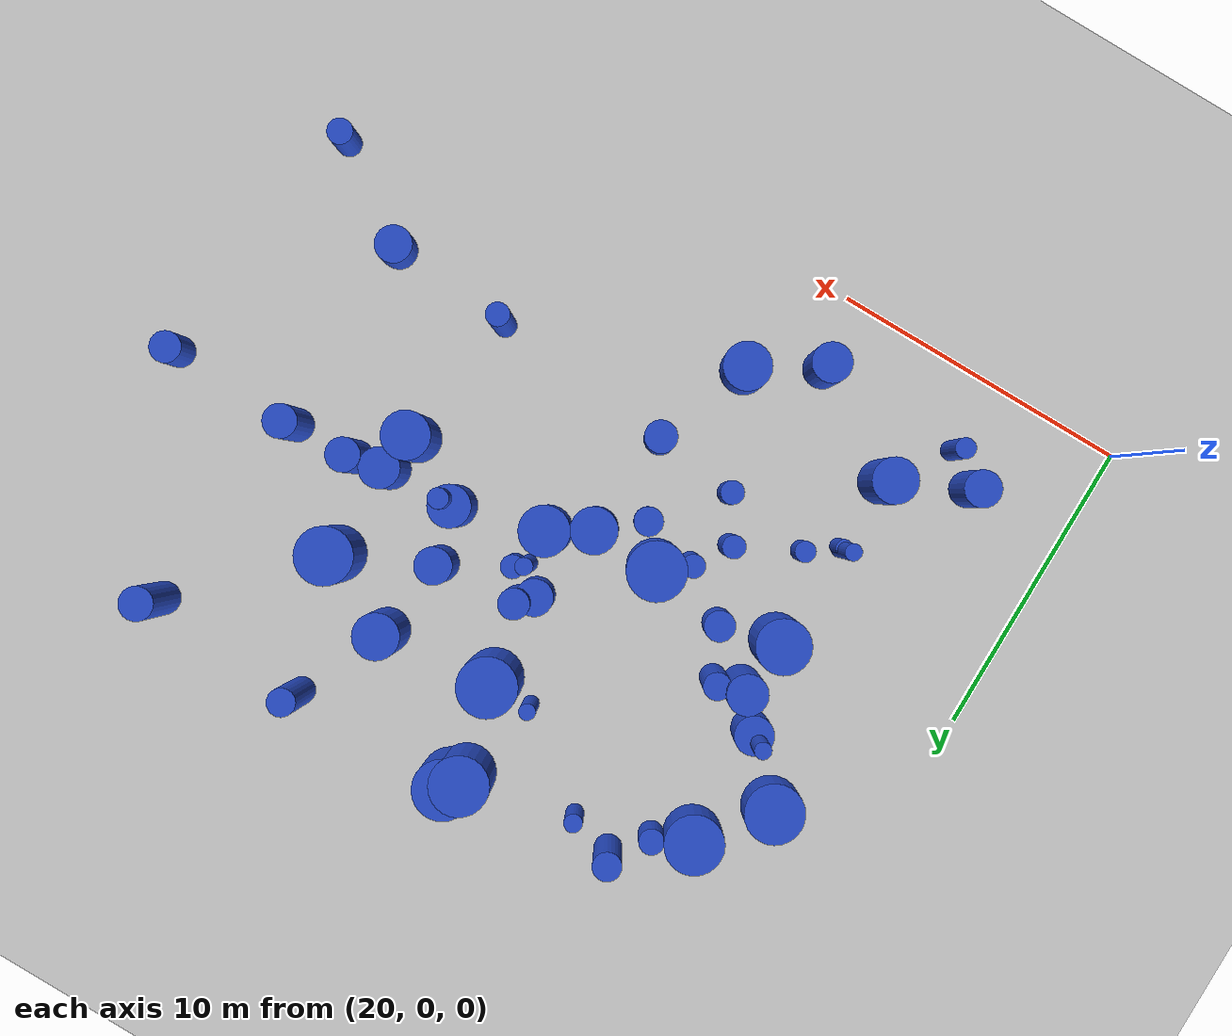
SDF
<sdf version="1.6">
 <world name="default">
  <model name="ground_plane">
   <static>1</static>
   <link name="link">
    <collision name="collision">
     <geometry><plane><normal>0 0 1</normal><size>100 100</size></plane></geometry>
     <surface><friction><ode><mu>100</mu><mu2>50</mu2></ode></friction></surface>
    </collision>
    <visual name="visual">
     <cast_shadows>0</cast_shadows>
     <geometry><plane><normal>0 0 1</normal><size>100 100</size></plane></geometry>
     <material>
      <script><uri>file://media/materials/scripts/gazebo.material</uri><name>Gazebo/Grey</name></script>
     </material>
    </visual>
   </link>
  </model>
  <model name="6">
   <static>0</static>
   <link name="link">
    <inertial>
     <mass>2</mass>
     <inertia><ixx>1.67554</ixx><ixy>0</ixy><ixz>0</ixz><iyy>1.67554</iyy><iyz>0</iyz><izz>0.257363</izz></inertia>
    </inertial>
    <collision name="collision">
     <geometry><cylinder><length>3.04649</length><radius>0.50731</radius></cylinder></geometry>
     <surface><contact><collide_without_contact>1</collide_without_contact></contact></surface>
    </collision>
    <visual name="visual">
     <geometry><cylinder><length>3.04649</length><radius>0.50731</radius></cylinder></geometry>
     <material>
      <script><uri>file://media/materials/scripts/gazebo.material</uri><name>Gazebo/Blue</name></script>
     </material>
    </visual>
    <gravity>0</gravity>
   </link>
   <pose>34.1541 13.9376 1.52325 0 -0 0</pose>
  </model>
  <model name="11">
   <static>0</static>
   <link name="link">
    <inertial>
     <mass>2</mass>
     <inertia><ixx>3.67772</ixx><ixy>0</ixy><ixz>0</ixz><iyy>3.67772</iyy><iyz>0</iyz><izz>0.546704</izz></inertia>
    </inertial>
    <collision name="collision">
     <geometry><cylinder><length>4.51954</length><radius>0.739394</radius></cylinder></geometry>
     <surface><contact><collide_without_contact>1</collide_without_contact></contact></surface>
    </collision>
    <visual name="visual">
     <geometry><cylinder><length>4.51954</length><radius>0.739394</radius></cylinder></geometry>
     <material>
      <script><uri>file://media/materials/scripts/gazebo.material</uri><name>Gazebo/Blue</name></script>
     </material>
    </visual>
    <gravity>0</gravity>
   </link>
   <pose>26.0271 4.56998 2.25977 0 -0 0</pose>
  </model>
  <model name="15">
   <static>0</static>
   <link name="link">
    <inertial>
     <mass>2</mass>
     <inertia><ixx>3.33766</ixx><ixy>0</ixy><ixz>0</ixz><iyy>3.33766</iyy><iyz>0</iyz><izz>0.789182</izz></inertia>
    </inertial>
    <collision name="collision">
     <geometry><cylinder><length>4.20219</length><radius>0.888359</radius></cylinder></geometry>
     <surface><contact><collide_without_contact>1</collide_without_contact></contact></surface>
    </collision>
    <visual name="visual">
     <geometry><cylinder><length>4.20219</length><radius>0.888359</radius></cylinder></geometry>
     <material>
      <script><uri>file://media/materials/scripts/gazebo.material</uri><name>Gazebo/Blue</name></script>
     </material>
    </visual>
    <gravity>0</gravity>
   </link>
   <pose>26.311 10.715 2.1011 0 -0 0</pose>
  </model>
  <model name="26">
   <static>0</static>
   <link name="link">
    <inertial>
     <mass>2</mass>
     <inertia><ixx>1.59022</ixx><ixy>0</ixy><ixz>0</ixz><iyy>1.59022</iyy><iyz>0</iyz><izz>0.948667</izz></inertia>
    </inertial>
    <collision name="collision">
     <geometry><cylinder><length>2.58753</length><radius>0.973996</radius></cylinder></geometry>
     <surface><contact><collide_without_contact>1</collide_without_contact></contact></surface>
    </collision>
    <visual name="visual">
     <geometry><cylinder><length>2.58753</length><radius>0.973996</radius></cylinder></geometry>
     <material>
      <script><uri>file://media/materials/scripts/gazebo.material</uri><name>Gazebo/Blue</name></script>
     </material>
    </visual>
    <gravity>0</gravity>
   </link>
   <pose>25.3744 17.5495 1.29377 0 -0 0</pose>
  </model>
  <model name="30">
   <static>0</static>
   <link name="link">
    <inertial>
     <mass>2</mass>
     <inertia><ixx>1.36472</ixx><ixy>0</ixy><ixz>0</ixz><iyy>1.36472</iyy><iyz>0</iyz><izz>0.964605</izz></inertia>
    </inertial>
    <collision name="collision">
     <geometry><cylinder><length>2.30098</length><radius>0.982143</radius></cylinder></geometry>
     <surface><contact><collide_without_contact>1</collide_without_contact></contact></surface>
    </collision>
    <visual name="visual">
     <geometry><cylinder><length>2.30098</length><radius>0.982143</radius></cylinder></geometry>
     <material>
      <script><uri>file://media/materials/scripts/gazebo.material</uri><name>Gazebo/Blue</name></script>
     </material>
    </visual>
    <gravity>0</gravity>
   </link>
   <pose>23.6658 15.4375 1.15049 0 -0 0</pose>
  </model>
  <model name="35">
   <static>0</static>
   <link name="link">
    <inertial>
     <mass>2</mass>
     <inertia>
      <ixx>1.09122</ixx>
      <ixy>0</ixy>
      <ixz>0</ixz>
      <iyy>1.09122</iyy>
      <iyz>0</iyz>
      <izz>0.0932913</izz>
     </inertia>
    </inertial>
    <collision name="collision">
     <geometry><cylinder><length>2.50348</length><radius>0.305436</radius></cylinder></geometry>
     <surface><contact><collide_without_contact>1</collide_without_contact></contact></surface>
    </collision>
    <visual name="visual">
     <geometry><cylinder><length>2.50348</length><radius>0.305436</radius></cylinder></geometry>
     <material>
      <script><uri>file://media/materials/scripts/gazebo.material</uri><name>Gazebo/Blue</name></script>
     </material>
    </visual>
    <gravity>0</gravity>
   </link>
   <pose>28.9997 18.9307 1.25174 0 -0 0</pose>
  </model>
  <model name="40">
   <static>0</static>
   <link name="link">
    <inertial>
     <mass>2</mass>
     <inertia><ixx>2.77857</ixx><ixy>0</ixy><ixz>0</ixz><iyy>2.77857</iyy><iyz>0</iyz><izz>0.218702</izz></inertia>
    </inertial>
    <collision name="collision">
     <geometry><cylinder><length>4.00191</length><radius>0.467656</radius></cylinder></geometry>
     <surface><contact><collide_without_contact>1</collide_without_contact></contact></surface>
    </collision>
    <visual name="visual">
     <geometry><cylinder><length>4.00191</length><radius>0.467656</radius></cylinder></geometry>
     <material>
      <script><uri>file://media/materials/scripts/gazebo.material</uri><name>Gazebo/Blue</name></script>
     </material>
    </visual>
    <gravity>0</gravity>
   </link>
   <pose>27.4866 19.3515 2.00096 0 -0 0</pose>
  </model>
  <model name="44">
   <static>0</static>
   <link name="link">
    <inertial>
     <mass>2</mass>
     <inertia><ixx>3.63122</ixx><ixy>0</ixy><ixz>0</ixz><iyy>3.63122</iyy><iyz>0</iyz><izz>0.614122</izz></inertia>
    </inertial>
    <collision name="collision">
     <geometry><cylinder><length>4.46598</length><radius>0.783659</radius></cylinder></geometry>
     <surface><contact><collide_without_contact>1</collide_without_contact></contact></surface>
    </collision>
    <visual name="visual">
     <geometry><cylinder><length>4.46598</length><radius>0.783659</radius></cylinder></geometry>
     <material>
      <script><uri>file://media/materials/scripts/gazebo.material</uri><name>Gazebo/Blue</name></script>
     </material>
    </visual>
    <gravity>0</gravity>
   </link>
   <pose>39.6417 11.1136 2.23299 0 -0 0</pose>
  </model>
  <model name="46">
   <static>0</static>
   <link name="link">
    <inertial>
     <mass>2</mass>
     <inertia>
      <ixx>0.904884</ixx>
      <ixy>0</ixy>
      <ixz>0</ixz>
      <iyy>0.904884</iyy>
      <iyz>0</iyz>
      <izz>0.374443</izz>
     </inertia>
    </inertial>
    <collision name="collision">
     <geometry><cylinder><length>2.07508</length><radius>0.611918</radius></cylinder></geometry>
     <surface><contact><collide_without_contact>1</collide_without_contact></contact></surface>
    </collision>
    <visual name="visual">
     <geometry><cylinder><length>2.07508</length><radius>0.611918</radius></cylinder></geometry>
     <material>
      <script><uri>file://media/materials/scripts/gazebo.material</uri><name>Gazebo/Blue</name></script>
     </material>
    </visual>
    <gravity>0</gravity>
   </link>
   <pose>43.3206 6.1671 1.03754 0 -0 0</pose>
  </model>
  <model name="52">
   <static>0</static>
   <link name="link">
    <inertial>
     <mass>2</mass>
     <inertia><ixx>2.09002</ixx><ixy>0</ixy><ixz>0</ixz><iyy>2.09002</iyy><iyz>0</iyz><izz>0.112428</izz></inertia>
    </inertial>
    <collision name="collision">
     <geometry><cylinder><length>3.49325</length><radius>0.335302</radius></cylinder></geometry>
     <surface><contact><collide_without_contact>1</collide_without_contact></contact></surface>
    </collision>
    <visual name="visual">
     <geometry><cylinder><length>3.49325</length><radius>0.335302</radius></cylinder></geometry>
     <material>
      <script><uri>file://media/materials/scripts/gazebo.material</uri><name>Gazebo/Blue</name></script>
     </material>
    </visual>
    <gravity>0</gravity>
   </link>
   <pose>24.5794 2.51328 1.74663 0 -0 0</pose>
  </model>
  <model name="89">
   <static>0</static>
   <link name="link">
    <inertial>
     <mass>2</mass>
     <inertia><ixx>1.27675</ixx><ixy>0</ixy><ixz>0</ixz><iyy>1.27675</iyy><iyz>0</iyz><izz>0.177285</izz></inertia>
    </inertial>
    <collision name="collision">
     <geometry><cylinder><length>2.66996</length><radius>0.421052</radius></cylinder></geometry>
     <surface><contact><collide_without_contact>1</collide_without_contact></contact></surface>
    </collision>
    <visual name="visual">
     <geometry><cylinder><length>2.66996</length><radius>0.421052</radius></cylinder></geometry>
     <material>
      <script><uri>file://media/materials/scripts/gazebo.material</uri><name>Gazebo/Blue</name></script>
     </material>
    </visual>
    <gravity>0</gravity>
   </link>
   <pose>46.5006 4.01887 1.33498 0 -0 0</pose>
  </model>
  <model name="90">
   <static>0</static>
   <link name="link">
    <inertial>
     <mass>2</mass>
     <inertia><ixx>1.14121</ixx><ixy>0</ixy><ixz>0</ixz><iyy>1.14121</iyy><iyz>0</iyz><izz>0.227526</izz></inertia>
    </inertial>
    <collision name="collision">
     <geometry><cylinder><length>2.48288</length><radius>0.476997</radius></cylinder></geometry>
     <surface><contact><collide_without_contact>1</collide_without_contact></contact></surface>
    </collision>
    <visual name="visual">
     <geometry><cylinder><length>2.48288</length><radius>0.476997</radius></cylinder></geometry>
     <material>
      <script><uri>file://media/materials/scripts/gazebo.material</uri><name>Gazebo/Blue</name></script>
     </material>
    </visual>
    <gravity>0</gravity>
   </link>
   <pose>31.8472 9.54839 1.24144 0 -0 0</pose>
  </model>
  <model name="102">
   <static>0</static>
   <link name="link">
    <inertial>
     <mass>2</mass>
     <inertia><ixx>3.00871</ixx><ixy>0</ixy><ixz>0</ixz><iyy>3.00871</iyy><iyz>0</iyz><izz>0.884047</izz></inertia>
    </inertial>
    <collision name="collision">
     <geometry><cylinder><length>3.9243</length><radius>0.940238</radius></cylinder></geometry>
     <surface><contact><collide_without_contact>1</collide_without_contact></contact></surface>
    </collision>
    <visual name="visual">
     <geometry><cylinder><length>3.9243</length><radius>0.940238</radius></cylinder></geometry>
     <material>
      <script><uri>file://media/materials/scripts/gazebo.material</uri><name>Gazebo/Blue</name></script>
     </material>
    </visual>
    <gravity>0</gravity>
   </link>
   <pose>39.9459 15.6386 1.96215 0 -0 0</pose>
  </model>
  <model name="106">
   <static>0</static>
   <link name="link">
    <inertial>
     <mass>2</mass>
     <inertia>
      <ixx>4.11623</ixx>
      <ixy>0</ixy>
      <ixz>0</ixz>
      <iyy>4.11623</iyy>
      <iyz>0</iyz>
      <izz>0.0741205</izz>
     </inertia>
    </inertial>
    <collision name="collision">
     <geometry><cylinder><length>4.94722</length><radius>0.272251</radius></cylinder></geometry>
     <surface><contact><collide_without_contact>1</collide_without_contact></contact></surface>
    </collision>
    <visual name="visual">
     <geometry><cylinder><length>4.94722</length><radius>0.272251</radius></cylinder></geometry>
     <material>
      <script><uri>file://media/materials/scripts/gazebo.material</uri><name>Gazebo/Blue</name></script>
     </material>
    </visual>
    <gravity>0</gravity>
   </link>
   <pose>26.0422 7.13223 2.47361 0 -0 0</pose>
  </model>
  <model name="111">
   <static>0</static>
   <link name="link">
    <inertial>
     <mass>2</mass>
     <inertia><ixx>2.81372</ixx><ixy>0</ixy><ixz>0</ixz><iyy>2.81372</iyy><iyz>0</iyz><izz>0.674403</izz></inertia>
    </inertial>
    <collision name="collision">
     <geometry><cylinder><length>3.85475</length><radius>0.821221</radius></cylinder></geometry>
     <surface><contact><collide_without_contact>1</collide_without_contact></contact></surface>
    </collision>
    <visual name="visual">
     <geometry><cylinder><length>3.85475</length><radius>0.821221</radius></cylinder></geometry>
     <material>
      <script><uri>file://media/materials/scripts/gazebo.material</uri><name>Gazebo/Blue</name></script>
     </material>
    </visual>
    <gravity>0</gravity>
   </link>
   <pose>34.4897 11.469 1.92738 0 -0 0</pose>
  </model>
  <model name="121">
   <static>0</static>
   <link name="link">
    <inertial>
     <mass>2</mass>
     <inertia><ixx>2.96479</ixx><ixy>0</ixy><ixz>0</ixz><iyy>2.96479</iyy><iyz>0</iyz><izz>0.93667</izz></inertia>
    </inertial>
    <collision name="collision">
     <geometry><cylinder><length>3.87023</length><radius>0.967817</radius></cylinder></geometry>
     <surface><contact><collide_without_contact>1</collide_without_contact></contact></surface>
    </collision>
    <visual name="visual">
     <geometry><cylinder><length>3.87023</length><radius>0.967817</radius></cylinder></geometry>
     <material>
      <script><uri>file://media/materials/scripts/gazebo.material</uri><name>Gazebo/Blue</name></script>
     </material>
    </visual>
    <gravity>0</gravity>
   </link>
   <pose>32.6949 19.6013 1.93512 0 -0 0</pose>
  </model>
  <model name="123">
   <static>0</static>
   <link name="link">
    <inertial>
     <mass>2</mass>
     <inertia><ixx>3.52291</ixx><ixy>0</ixy><ixz>0</ixz><iyy>3.52291</iyy><iyz>0</iyz><izz>0.302522</izz></inertia>
    </inertial>
    <collision name="collision">
     <geometry><cylinder><length>4.49777</length><radius>0.55002</radius></cylinder></geometry>
     <surface><contact><collide_without_contact>1</collide_without_contact></contact></surface>
    </collision>
    <visual name="visual">
     <geometry><cylinder><length>4.49777</length><radius>0.55002</radius></cylinder></geometry>
     <material>
      <script><uri>file://media/materials/scripts/gazebo.material</uri><name>Gazebo/Blue</name></script>
     </material>
    </visual>
    <gravity>0</gravity>
   </link>
   <pose>44.066 19.802 2.24888 0 -0 0</pose>
  </model>
  <model name="129">
   <static>0</static>
   <link name="link">
    <inertial>
     <mass>2</mass>
     <inertia><ixx>2.32373</ixx><ixy>0</ixy><ixz>0</ixz><iyy>2.32373</iyy><iyz>0</iyz><izz>0.141262</izz></inertia>
    </inertial>
    <collision name="collision">
     <geometry><cylinder><length>3.67676</length><radius>0.375848</radius></cylinder></geometry>
     <surface><contact><collide_without_contact>1</collide_without_contact></contact></surface>
    </collision>
    <visual name="visual">
     <geometry><cylinder><length>3.67676</length><radius>0.375848</radius></cylinder></geometry>
     <material>
      <script><uri>file://media/materials/scripts/gazebo.material</uri><name>Gazebo/Blue</name></script>
     </material>
    </visual>
    <gravity>0</gravity>
   </link>
   <pose>29.1877 8.8589 1.83838 0 -0 0</pose>
  </model>
  <model name="131">
   <static>0</static>
   <link name="link">
    <inertial>
     <mass>2</mass>
     <inertia><ixx>1.30772</ixx><ixy>0</ixy><ixz>0</ixz><iyy>1.30772</iyy><iyz>0</iyz><izz>0.4134</izz></inertia>
    </inertial>
    <collision name="collision">
     <geometry><cylinder><length>2.57024</length><radius>0.642962</radius></cylinder></geometry>
     <surface><contact><collide_without_contact>1</collide_without_contact></contact></surface>
    </collision>
    <visual name="visual">
     <geometry><cylinder><length>2.57024</length><radius>0.642962</radius></cylinder></geometry>
     <material>
      <script><uri>file://media/materials/scripts/gazebo.material</uri><name>Gazebo/Blue</name></script>
     </material>
    </visual>
    <gravity>0</gravity>
   </link>
   <pose>25.5249 13.6277 1.28512 0 -0 0</pose>
  </model>
  <model name="133">
   <static>0</static>
   <link name="link">
    <inertial>
     <mass>2</mass>
     <inertia><ixx>2.65468</ixx><ixy>0</ixy><ixz>0</ixz><iyy>2.65468</iyy><iyz>0</iyz><izz>0.197735</izz></inertia>
    </inertial>
    <collision name="collision">
     <geometry><cylinder><length>3.91597</length><radius>0.444674</radius></cylinder></geometry>
     <surface><contact><collide_without_contact>1</collide_without_contact></contact></surface>
    </collision>
    <visual name="visual">
     <geometry><cylinder><length>3.91597</length><radius>0.444674</radius></cylinder></geometry>
     <material>
      <script><uri>file://media/materials/scripts/gazebo.material</uri><name>Gazebo/Blue</name></script>
     </material>
    </visual>
    <gravity>0</gravity>
   </link>
   <pose>27.4263 12.8234 1.95799 0 -0 0</pose>
  </model>
  <model name="136">
   <static>0</static>
   <link name="link">
    <inertial>
     <mass>2</mass>
     <inertia><ixx>1.13934</ixx><ixy>0</ixy><ixz>0</ixz><iyy>1.13934</iyy><iyz>0</iyz><izz>0.372136</izz></inertia>
    </inertial>
    <collision name="collision">
     <geometry><cylinder><length>2.39158</length><radius>0.610029</radius></cylinder></geometry>
     <surface><contact><collide_without_contact>1</collide_without_contact></contact></surface>
    </collision>
    <visual name="visual">
     <geometry><cylinder><length>2.39158</length><radius>0.610029</radius></cylinder></geometry>
     <material>
      <script><uri>file://media/materials/scripts/gazebo.material</uri><name>Gazebo/Blue</name></script>
     </material>
    </visual>
    <gravity>0</gravity>
   </link>
   <pose>33.7146 13.4707 1.19579 0 -0 0</pose>
  </model>
  <model name="141">
   <static>0</static>
   <link name="link">
    <inertial>
     <mass>2</mass>
     <inertia>
      <ixx>0.773371</ixx>
      <ixy>0</ixy>
      <ixz>0</ixz>
      <iyy>0.773371</iyy>
      <iyz>0</iyz>
      <izz>0.17741</izz>
     </inertia>
    </inertial>
    <collision name="collision">
     <geometry><cylinder><length>2.02682</length><radius>0.421201</radius></cylinder></geometry>
     <surface><contact><collide_without_contact>1</collide_without_contact></contact></surface>
    </collision>
    <visual name="visual">
     <geometry><cylinder><length>2.02682</length><radius>0.421201</radius></cylinder></geometry>
     <material>
      <script><uri>file://media/materials/scripts/gazebo.material</uri><name>Gazebo/Blue</name></script>
     </material>
    </visual>
    <gravity>0</gravity>
   </link>
   <pose>26.534 18.2207 1.01341 0 -0 0</pose>
  </model>
  <model name="142">
   <static>0</static>
   <link name="link">
    <inertial>
     <mass>2</mass>
     <inertia><ixx>3.72978</ixx><ixy>0</ixy><ixz>0</ixz><iyy>3.72978</iyy><iyz>0</iyz><izz>0.206879</izz></inertia>
    </inertial>
    <collision name="collision">
     <geometry><cylinder><length>4.66455</length><radius>0.454839</radius></cylinder></geometry>
     <surface><contact><collide_without_contact>1</collide_without_contact></contact></surface>
    </collision>
    <visual name="visual">
     <geometry><cylinder><length>4.66455</length><radius>0.454839</radius></cylinder></geometry>
     <material>
      <script><uri>file://media/materials/scripts/gazebo.material</uri><name>Gazebo/Blue</name></script>
     </material>
    </visual>
    <gravity>0</gravity>
   </link>
   <pose>38.6761 20.082 2.33228 0 -0 0</pose>
  </model>
  <model name="147">
   <static>0</static>
   <link name="link">
    <inertial>
     <mass>2</mass>
     <inertia><ixx>2.71197</ixx><ixy>0</ixy><ixz>0</ixz><iyy>2.71197</iyy><iyz>0</iyz><izz>0.566044</izz></inertia>
    </inertial>
    <collision name="collision">
     <geometry><cylinder><length>3.81755</length><radius>0.752359</radius></cylinder></geometry>
     <surface><contact><collide_without_contact>1</collide_without_contact></contact></surface>
    </collision>
    <visual name="visual">
     <geometry><cylinder><length>3.81755</length><radius>0.752359</radius></cylinder></geometry>
     <material>
      <script><uri>file://media/materials/scripts/gazebo.material</uri><name>Gazebo/Blue</name></script>
     </material>
    </visual>
    <gravity>0</gravity>
   </link>
   <pose>37.2852 16.9555 1.90878 0 -0 0</pose>
  </model>
  <model name="150">
   <static>0</static>
   <link name="link">
    <inertial>
     <mass>2</mass>
     <inertia><ixx>1.24083</ixx><ixy>0</ixy><ixz>0</ixz><iyy>1.24083</iyy><iyz>0</iyz><izz>0.266175</izz></inertia>
    </inertial>
    <collision name="collision">
     <geometry><cylinder><length>2.57807</length><radius>0.515922</radius></cylinder></geometry>
     <surface><contact><collide_without_contact>1</collide_without_contact></contact></surface>
    </collision>
    <visual name="visual">
     <geometry><cylinder><length>2.57807</length><radius>0.515922</radius></cylinder></geometry>
     <material>
      <script><uri>file://media/materials/scripts/gazebo.material</uri><name>Gazebo/Blue</name></script>
     </material>
    </visual>
    <gravity>0</gravity>
   </link>
   <pose>47.7472 12.6653 1.28904 0 -0 0</pose>
  </model>
  <model name="152">
   <static>0</static>
   <link name="link">
    <inertial>
     <mass>2</mass>
     <inertia><ixx>2.66705</ixx><ixy>0</ixy><ixz>0</ixz><iyy>2.66705</iyy><iyz>0</iyz><izz>0.437548</izz></inertia>
    </inertial>
    <collision name="collision">
     <geometry><cylinder><length>3.83271</length><radius>0.661474</radius></cylinder></geometry>
     <surface><contact><collide_without_contact>1</collide_without_contact></contact></surface>
    </collision>
    <visual name="visual">
     <geometry><cylinder><length>3.83271</length><radius>0.661474</radius></cylinder></geometry>
     <material>
      <script><uri>file://media/materials/scripts/gazebo.material</uri><name>Gazebo/Blue</name></script>
     </material>
    </visual>
    <gravity>0</gravity>
   </link>
   <pose>39.8846 12.4135 1.91635 0 -0 0</pose>
  </model>
  <model name="153">
   <static>0</static>
   <link name="link">
    <inertial>
     <mass>2</mass>
     <inertia><ixx>2.11623</ixx><ixy>0</ixy><ixz>0</ixz><iyy>2.11623</iyy><iyz>0</iyz><izz>0.485566</izz></inertia>
    </inertial>
    <collision name="collision">
     <geometry><cylinder><length>3.35272</length><radius>0.696826</radius></cylinder></geometry>
     <surface><contact><collide_without_contact>1</collide_without_contact></contact></surface>
    </collision>
    <visual name="visual">
     <geometry><cylinder><length>3.35272</length><radius>0.696826</radius></cylinder></geometry>
     <material>
      <script><uri>file://media/materials/scripts/gazebo.material</uri><name>Gazebo/Blue</name></script>
     </material>
    </visual>
    <gravity>0</gravity>
   </link>
   <pose>37.4483 12.3398 1.67636 0 -0 0</pose>
  </model>
  <model name="161">
   <static>0</static>
   <link name="link">
    <inertial>
     <mass>2</mass>
     <inertia><ixx>1.04062</ixx><ixy>0</ixy><ixz>0</ixz><iyy>1.04062</iyy><iyz>0</iyz><izz>0.257795</izz></inertia>
    </inertial>
    <collision name="collision">
     <geometry><cylinder><length>2.33887</length><radius>0.507735</radius></cylinder></geometry>
     <surface><contact><collide_without_contact>1</collide_without_contact></contact></surface>
    </collision>
    <visual name="visual">
     <geometry><cylinder><length>2.33887</length><radius>0.507735</radius></cylinder></geometry>
     <material>
      <script><uri>file://media/materials/scripts/gazebo.material</uri><name>Gazebo/Blue</name></script>
     </material>
    </visual>
    <gravity>0</gravity>
   </link>
   <pose>28.2179 11.2291 1.16943 0 -0 0</pose>
  </model>
  <model name="166">
   <static>0</static>
   <link name="link">
    <inertial>
     <mass>2</mass>
     <inertia>
      <ixx>0.802403</ixx>
      <ixy>0</ixy>
      <ixz>0</ixz>
      <iyy>0.802403</iyy>
      <iyz>0</iyz>
      <izz>0.153345</izz>
     </inertia>
    </inertial>
    <collision name="collision">
     <geometry><cylinder><length>2.08672</length><radius>0.391593</radius></cylinder></geometry>
     <surface><contact><collide_without_contact>1</collide_without_contact></contact></surface>
    </collision>
    <visual name="visual">
     <geometry><cylinder><length>2.08672</length><radius>0.391593</radius></cylinder></geometry>
     <material>
      <script><uri>file://media/materials/scripts/gazebo.material</uri><name>Gazebo/Blue</name></script>
     </material>
    </visual>
    <gravity>0</gravity>
   </link>
   <pose>34.8114 12.9983 1.04336 0 -0 0</pose>
  </model>
  <model name="167">
   <static>0</static>
   <link name="link">
    <inertial>
     <mass>2</mass>
     <inertia><ixx>2.69004</ixx><ixy>0</ixy><ixz>0</ixz><iyy>2.69004</iyy><iyz>0</iyz><izz>0.419163</izz></inertia>
    </inertial>
    <collision name="collision">
     <geometry><cylinder><length>3.85781</length><radius>0.647428</radius></cylinder></geometry>
     <surface><contact><collide_without_contact>1</collide_without_contact></contact></surface>
    </collision>
    <visual name="visual">
     <geometry><cylinder><length>3.85781</length><radius>0.647428</radius></cylinder></geometry>
     <material>
      <script><uri>file://media/materials/scripts/gazebo.material</uri><name>Gazebo/Blue</name></script>
     </material>
    </visual>
    <gravity>0</gravity>
   </link>
   <pose>29.5257 2.39468 1.92891 0 -0 0</pose>
  </model>
  <model name="171">
   <static>0</static>
   <link name="link">
    <inertial>
     <mass>2</mass>
     <inertia><ixx>3.80906</ixx><ixy>0</ixy><ixz>0</ixz><iyy>3.80906</iyy><iyz>0</iyz><izz>0.938182</izz></inertia>
    </inertial>
    <collision name="collision">
     <geometry><cylinder><length>4.47658</length><radius>0.968598</radius></cylinder></geometry>
     <surface><contact><collide_without_contact>1</collide_without_contact></contact></surface>
    </collision>
    <visual name="visual">
     <geometry><cylinder><length>4.47658</length><radius>0.968598</radius></cylinder></geometry>
     <material>
      <script><uri>file://media/materials/scripts/gazebo.material</uri><name>Gazebo/Blue</name></script>
     </material>
    </visual>
    <gravity>0</gravity>
   </link>
   <pose>33.5153 16.4732 2.23829 0 -0 0</pose>
  </model>
  <model name="177">
   <static>0</static>
   <link name="link">
    <inertial>
     <mass>2</mass>
     <inertia><ixx>1.29724</ixx><ixy>0</ixy><ixz>0</ixz><iyy>1.29724</iyy><iyz>0</iyz><izz>0.287893</izz></inertia>
    </inertial>
    <collision name="collision">
     <geometry><cylinder><length>2.63054</length><radius>0.536557</radius></cylinder></geometry>
     <surface><contact><collide_without_contact>1</collide_without_contact></contact></surface>
    </collision>
    <visual name="visual">
     <geometry><cylinder><length>2.63054</length><radius>0.536557</radius></cylinder></geometry>
     <material>
      <script><uri>file://media/materials/scripts/gazebo.material</uri><name>Gazebo/Blue</name></script>
     </material>
    </visual>
    <gravity>0</gravity>
   </link>
   <pose>32.8916 7.05394 1.31527 0 -0 0</pose>
  </model>
  <model name="179">
   <static>0</static>
   <link name="link">
    <inertial>
     <mass>2</mass>
     <inertia>
      <ixx>3.76703</ixx>
      <ixy>0</ixy>
      <ixz>0</ixz>
      <iyy>3.76703</iyy>
      <iyz>0</iyz>
      <izz>0.0770353</izz>
     </inertia>
    </inertial>
    <collision name="collision">
     <geometry><cylinder><length>4.72981</length><radius>0.277552</radius></cylinder></geometry>
     <surface><contact><collide_without_contact>1</collide_without_contact></contact></surface>
    </collision>
    <visual name="visual">
     <geometry><cylinder><length>4.72981</length><radius>0.277552</radius></cylinder></geometry>
     <material>
      <script><uri>file://media/materials/scripts/gazebo.material</uri><name>Gazebo/Blue</name></script>
     </material>
    </visual>
    <gravity>0</gravity>
   </link>
   <pose>25.2744 13.7542 2.3649 0 -0 0</pose>
  </model>
  <model name="180">
   <static>0</static>
   <link name="link">
    <inertial>
     <mass>2</mass>
     <inertia><ixx>3.44735</ixx><ixy>0</ixy><ixz>0</ixz><iyy>3.44735</iyy><iyz>0</iyz><izz>0.113907</izz></inertia>
    </inertial>
    <collision name="collision">
     <geometry><cylinder><length>4.51025</length><radius>0.337501</radius></cylinder></geometry>
     <surface><contact><collide_without_contact>1</collide_without_contact></contact></surface>
    </collision>
    <visual name="visual">
     <geometry><cylinder><length>4.51025</length><radius>0.337501</radius></cylinder></geometry>
     <material>
      <script><uri>file://media/materials/scripts/gazebo.material</uri><name>Gazebo/Blue</name></script>
     </material>
    </visual>
    <gravity>0</gravity>
   </link>
   <pose>37.7872 12.2615 2.25513 0 -0 0</pose>
  </model>
  <model name="184">
   <static>0</static>
   <link name="link">
    <inertial>
     <mass>2</mass>
     <inertia><ixx>2.8983</ixx><ixy>0</ixy><ixz>0</ixz><iyy>2.8983</iyy><iyz>0</iyz><izz>0.305029</izz></inertia>
    </inertial>
    <collision name="collision">
     <geometry><cylinder><length>4.05891</length><radius>0.552294</radius></cylinder></geometry>
     <surface><contact><collide_without_contact>1</collide_without_contact></contact></surface>
    </collision>
    <visual name="visual">
     <geometry><cylinder><length>4.05891</length><radius>0.552294</radius></cylinder></geometry>
     <material>
      <script><uri>file://media/materials/scripts/gazebo.material</uri><name>Gazebo/Blue</name></script>
     </material>
    </visual>
    <gravity>0</gravity>
   </link>
   <pose>43.2383 12.7435 2.02945 0 -0 0</pose>
  </model>
  <model name="191">
   <static>0</static>
   <link name="link">
    <inertial>
     <mass>2</mass>
     <inertia><ixx>4.3988</ixx><ixy>0</ixy><ixz>0</ixz><iyy>4.3988</iyy><iyz>0</iyz><izz>0.551901</izz></inertia>
    </inertial>
    <collision name="collision">
     <geometry><cylinder><length>4.97364</length><radius>0.7429</radius></cylinder></geometry>
     <surface><contact><collide_without_contact>1</collide_without_contact></contact></surface>
    </collision>
    <visual name="visual">
     <geometry><cylinder><length>4.97364</length><radius>0.7429</radius></cylinder></geometry>
     <material>
      <script><uri>file://media/materials/scripts/gazebo.material</uri><name>Gazebo/Blue</name></script>
     </material>
    </visual>
    <gravity>0</gravity>
   </link>
   <pose>33.1657 10.6401 2.48682 0 -0 0</pose>
  </model>
  <model name="194">
   <static>0</static>
   <link name="link">
    <inertial>
     <mass>2</mass>
     <inertia><ixx>1.99536</ixx><ixy>0</ixy><ixz>0</ixz><iyy>1.99536</iyy><iyz>0</iyz><izz>0.368304</izz></inertia>
    </inertial>
    <collision name="collision">
     <geometry><cylinder><length>3.29655</length><radius>0.60688</radius></cylinder></geometry>
     <surface><contact><collide_without_contact>1</collide_without_contact></contact></surface>
    </collision>
    <visual name="visual">
     <geometry><cylinder><length>3.29655</length><radius>0.60688</radius></cylinder></geometry>
     <material>
      <script><uri>file://media/materials/scripts/gazebo.material</uri><name>Gazebo/Blue</name></script>
     </material>
    </visual>
    <gravity>0</gravity>
   </link>
   <pose>36.9169 14.1988 1.64828 0 -0 0</pose>
  </model>
  <model name="197">
   <static>0</static>
   <link name="link">
    <inertial>
     <mass>2</mass>
     <inertia><ixx>2.7156</ixx><ixy>0</ixy><ixz>0</ixz><iyy>2.7156</iyy><iyz>0</iyz><izz>0.960869</izz></inertia>
    </inertial>
    <collision name="collision">
     <geometry><cylinder><length>3.6621</length><radius>0.980239</radius></cylinder></geometry>
     <surface><contact><collide_without_contact>1</collide_without_contact></contact></surface>
    </collision>
    <visual name="visual">
     <geometry><cylinder><length>3.6621</length><radius>0.980239</radius></cylinder></geometry>
     <material>
      <script><uri>file://media/materials/scripts/gazebo.material</uri><name>Gazebo/Blue</name></script>
     </material>
    </visual>
    <gravity>0</gravity>
   </link>
   <pose>33.0641 19.9853 1.83105 0 -0 0</pose>
  </model>
  <model name="212">
   <static>0</static>
   <link name="link">
    <inertial>
     <mass>2</mass>
     <inertia>
      <ixx>1.71859</ixx>
      <ixy>0</ixy>
      <ixz>0</ixz>
      <iyy>1.71859</iyy>
      <iyz>0</iyz>
      <izz>0.0738454</izz>
     </inertia>
    </inertial>
    <collision name="collision">
     <geometry><cylinder><length>3.17647</length><radius>0.271745</radius></cylinder></geometry>
     <surface><contact><collide_without_contact>1</collide_without_contact></contact></surface>
    </collision>
    <visual name="visual">
     <geometry><cylinder><length>3.17647</length><radius>0.271745</radius></cylinder></geometry>
     <material>
      <script><uri>file://media/materials/scripts/gazebo.material</uri><name>Gazebo/Blue</name></script>
     </material>
    </visual>
    <gravity>0</gravity>
   </link>
   <pose>32.0536 16.6024 1.58824 0 -0 0</pose>
  </model>
  <model name="213">
   <static>0</static>
   <link name="link">
    <inertial>
     <mass>2</mass>
     <inertia><ixx>2.75082</ixx><ixy>0</ixy><ixz>0</ixz><iyy>2.75082</iyy><iyz>0</iyz><izz>0.142225</izz></inertia>
    </inertial>
    <collision name="collision">
     <geometry><cylinder><length>4.00977</length><radius>0.377127</radius></cylinder></geometry>
     <surface><contact><collide_without_contact>1</collide_without_contact></contact></surface>
    </collision>
    <visual name="visual">
     <geometry><cylinder><length>4.00977</length><radius>0.377127</radius></cylinder></geometry>
     <material>
      <script><uri>file://media/materials/scripts/gazebo.material</uri><name>Gazebo/Blue</name></script>
     </material>
    </visual>
    <gravity>0</gravity>
   </link>
   <pose>29.9703 10.0145 2.00488 0 -0 0</pose>
  </model>
  <model name="215">
   <static>0</static>
   <link name="link">
    <inertial>
     <mass>2</mass>
     <inertia><ixx>2.74024</ixx><ixy>0</ixy><ixz>0</ixz><iyy>2.74024</iyy><iyz>0</iyz><izz>0.308937</izz></inertia>
    </inertial>
    <collision name="collision">
     <geometry><cylinder><length>3.93886</length><radius>0.555821</radius></cylinder></geometry>
     <surface><contact><collide_without_contact>1</collide_without_contact></contact></surface>
    </collision>
    <visual name="visual">
     <geometry><cylinder><length>3.93886</length><radius>0.555821</radius></cylinder></geometry>
     <material>
      <script><uri>file://media/materials/scripts/gazebo.material</uri><name>Gazebo/Blue</name></script>
     </material>
    </visual>
    <gravity>0</gravity>
   </link>
   <pose>41.0527 12.6409 1.96943 0 -0 0</pose>
  </model>
  <model name="219">
   <static>0</static>
   <link name="link">
    <inertial>
     <mass>2</mass>
     <inertia><ixx>1.58303</ixx><ixy>0</ixy><ixz>0</ixz><iyy>1.58303</iyy><iyz>0</iyz><izz>0.626246</izz></inertia>
    </inertial>
    <collision name="collision">
     <geometry><cylinder><length>2.76034</length><radius>0.791357</radius></cylinder></geometry>
     <surface><contact><collide_without_contact>1</collide_without_contact></contact></surface>
    </collision>
    <visual name="visual">
     <geometry><cylinder><length>2.76034</length><radius>0.791357</radius></cylinder></geometry>
     <material>
      <script><uri>file://media/materials/scripts/gazebo.material</uri><name>Gazebo/Blue</name></script>
     </material>
    </visual>
    <gravity>0</gravity>
   </link>
   <pose>31.6978 3.75579 1.38017 0 -0 0</pose>
  </model>
  <model name="221">
   <static>0</static>
   <link name="link">
    <inertial>
     <mass>2</mass>
     <inertia><ixx>2.31346</ixx><ixy>0</ixy><ixz>0</ixz><iyy>2.31346</iyy><iyz>0</iyz><izz>0.365877</izz></inertia>
    </inertial>
    <collision name="collision">
     <geometry><cylinder><length>3.57535</length><radius>0.604878</radius></cylinder></geometry>
     <surface><contact><collide_without_contact>1</collide_without_contact></contact></surface>
    </collision>
    <visual name="visual">
     <geometry><cylinder><length>3.57535</length><radius>0.604878</radius></cylinder></geometry>
     <material>
      <script><uri>file://media/materials/scripts/gazebo.material</uri><name>Gazebo/Blue</name></script>
     </material>
    </visual>
    <gravity>0</gravity>
   </link>
   <pose>23.4732 3.32358 1.78767 0 -0 0</pose>
  </model>
  <model name="225">
   <static>0</static>
   <link name="link">
    <inertial>
     <mass>2</mass>
     <inertia><ixx>1.28209</ixx><ixy>0</ixy><ixz>0</ixz><iyy>1.28209</iyy><iyz>0</iyz><izz>0.149104</izz></inertia>
    </inertial>
    <collision name="collision">
     <geometry><cylinder><length>2.6917</length><radius>0.38614</radius></cylinder></geometry>
     <surface><contact><collide_without_contact>1</collide_without_contact></contact></surface>
    </collision>
    <visual name="visual">
     <geometry><cylinder><length>2.6917</length><radius>0.38614</radius></cylinder></geometry>
     <material>
      <script><uri>file://media/materials/scripts/gazebo.material</uri><name>Gazebo/Blue</name></script>
     </material>
    </visual>
    <gravity>0</gravity>
   </link>
   <pose>30.0636 7.40903 1.34585 0 -0 0</pose>
  </model>
  <model name="227">
   <static>0</static>
   <link name="link">
    <inertial>
     <mass>2</mass>
     <inertia><ixx>3.36596</ixx><ixy>0</ixy><ixz>0</ixz><iyy>3.36596</iyy><iyz>0</iyz><izz>0.434671</izz></inertia>
    </inertial>
    <collision name="collision">
     <geometry><cylinder><length>4.34647</length><radius>0.659296</radius></cylinder></geometry>
     <surface><contact><collide_without_contact>1</collide_without_contact></contact></surface>
    </collision>
    <visual name="visual">
     <geometry><cylinder><length>4.34647</length><radius>0.659296</radius></cylinder></geometry>
     <material>
      <script><uri>file://media/materials/scripts/gazebo.material</uri><name>Gazebo/Blue</name></script>
     </material>
    </visual>
    <gravity>0</gravity>
   </link>
   <pose>26.5161 12.5519 2.17323 0 -0 0</pose>
  </model>
  <model name="235">
   <static>0</static>
   <link name="link">
    <inertial>
     <mass>2</mass>
     <inertia><ixx>3.77912</ixx><ixy>0</ixy><ixz>0</ixz><iyy>3.77912</iyy><iyz>0</iyz><izz>0.145848</izz></inertia>
    </inertial>
    <collision name="collision">
     <geometry><cylinder><length>4.71563</length><radius>0.3819</radius></cylinder></geometry>
     <surface><contact><collide_without_contact>1</collide_without_contact></contact></surface>
    </collision>
    <visual name="visual">
     <geometry><cylinder><length>4.71563</length><radius>0.3819</radius></cylinder></geometry>
     <material>
      <script><uri>file://media/materials/scripts/gazebo.material</uri><name>Gazebo/Blue</name></script>
     </material>
    </visual>
    <gravity>0</gravity>
   </link>
   <pose>39.1013 6.48615 2.35781 0 -0 0</pose>
  </model>
  <model name="236">
   <static>0</static>
   <link name="link">
    <inertial>
     <mass>2</mass>
     <inertia>
      <ixx>2.86049</ixx>
      <ixy>0</ixy>
      <ixz>0</ixz>
      <iyy>2.86049</iyy>
      <iyz>0</iyz>
      <izz>0.0831779</izz>
     </inertia>
    </inertial>
    <collision name="collision">
     <geometry><cylinder><length>4.11259</length><radius>0.288406</radius></cylinder></geometry>
     <surface><contact><collide_without_contact>1</collide_without_contact></contact></surface>
    </collision>
    <visual name="visual">
     <geometry><cylinder><length>4.11259</length><radius>0.288406</radius></cylinder></geometry>
     <material>
      <script><uri>file://media/materials/scripts/gazebo.material</uri><name>Gazebo/Blue</name></script>
     </material>
    </visual>
    <gravity>0</gravity>
   </link>
   <pose>34.4621 12.7183 2.0563 0 -0 0</pose>
  </model>
  <model name="237">
   <static>0</static>
   <link name="link">
    <inertial>
     <mass>2</mass>
     <inertia>
      <ixx>0.795104</ixx>
      <ixy>0</ixy>
      <ixz>0</ixz>
      <iyy>0.795104</iyy>
      <iyz>0</iyz>
      <izz>0.118819</izz>
     </inertia>
    </inertial>
    <collision name="collision">
     <geometry><cylinder><length>2.10099</length><radius>0.344702</radius></cylinder></geometry>
     <surface><contact><collide_without_contact>1</collide_without_contact></contact></surface>
    </collision>
    <visual name="visual">
     <geometry><cylinder><length>2.10099</length><radius>0.344702</radius></cylinder></geometry>
     <material>
      <script><uri>file://media/materials/scripts/gazebo.material</uri><name>Gazebo/Blue</name></script>
     </material>
    </visual>
    <gravity>0</gravity>
   </link>
   <pose>27.0916 7.81483 1.0505 0 -0 0</pose>
  </model>
  <model name="243">
   <static>0</static>
   <link name="link">
    <inertial>
     <mass>2</mass>
     <inertia><ixx>4.24812</ixx><ixy>0</ixy><ixz>0</ixz><iyy>4.24812</iyy><iyz>0</iyz><izz>0.909035</izz></inertia>
    </inertial>
    <collision name="collision">
     <geometry><cylinder><length>4.77091</length><radius>0.953433</radius></cylinder></geometry>
     <surface><contact><collide_without_contact>1</collide_without_contact></contact></surface>
    </collision>
    <visual name="visual">
     <geometry><cylinder><length>4.77091</length><radius>0.953433</radius></cylinder></geometry>
     <material>
      <script><uri>file://media/materials/scripts/gazebo.material</uri><name>Gazebo/Blue</name></script>
     </material>
    </visual>
    <gravity>0</gravity>
   </link>
   <pose>30.8804 10.7206 2.38546 0 -0 0</pose>
  </model>
  <model name="247">
   <static>0</static>
   <link name="link">
    <inertial>
     <mass>2</mass>
     <inertia>
      <ixx>0.961599</ixx>
      <ixy>0</ixy>
      <ixz>0</ixz>
      <iyy>0.961599</iyy>
      <iyz>0</iyz>
      <izz>0.0758823</izz>
     </inertia>
    </inertial>
    <collision name="collision">
     <geometry><cylinder><length>2.35413</length><radius>0.275467</radius></cylinder></geometry>
     <surface><contact><collide_without_contact>1</collide_without_contact></contact></surface>
    </collision>
    <visual name="visual">
     <geometry><cylinder><length>2.35413</length><radius>0.275467</radius></cylinder></geometry>
     <material>
      <script><uri>file://media/materials/scripts/gazebo.material</uri><name>Gazebo/Blue</name></script>
     </material>
    </visual>
    <gravity>0</gravity>
   </link>
   <pose>26.1173 7.07936 1.17707 0 -0 0</pose>
  </model>
 </world>
</sdf>
